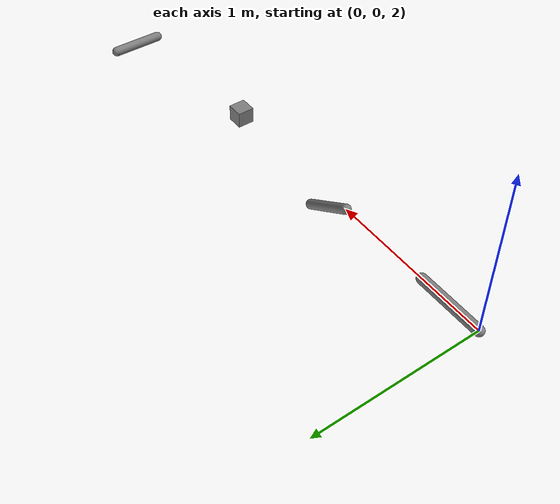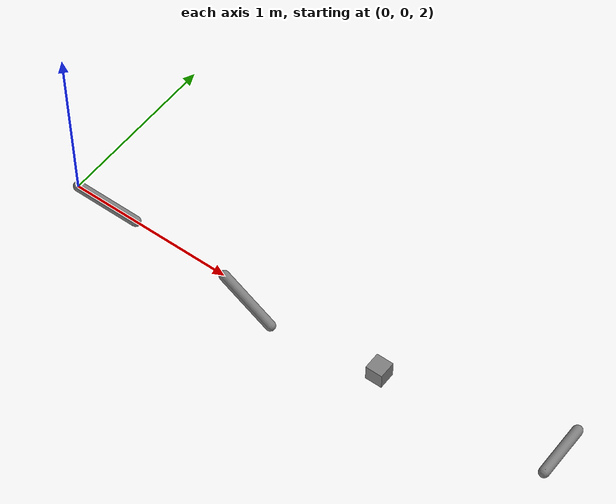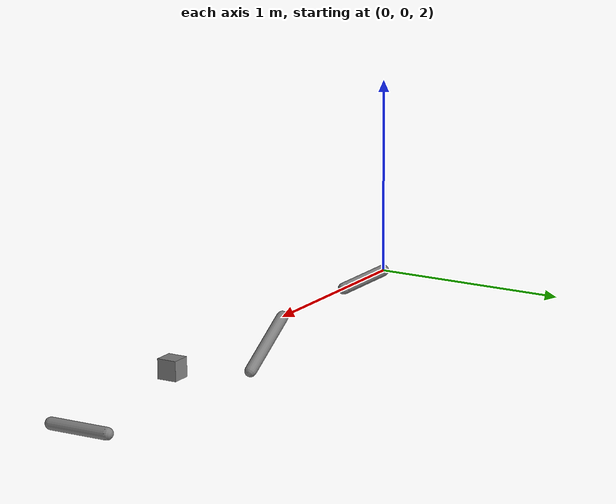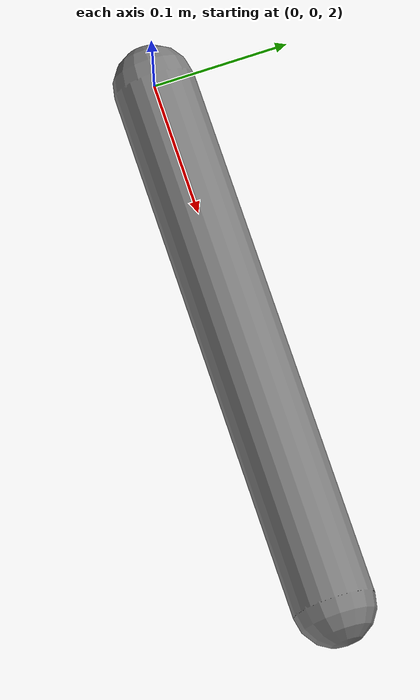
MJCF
<!-- Copyright 2026 -- CONTRIBUTORS. See LICENSE. -->
<mujoco model="limits">
  <worldbody>
    <body name="hinged" pos="0 0 2">
      <joint name="hinge" axis="0 1 0" range="-30 30"
             solreflimit="0.01 0.8" solimplimit="0.8 0.95 0.002"/>
      <geom type="capsule" fromto="0 0 0 0.4 0 0" size="0.03"/>
    </body>
    <body name="balled" pos="1 0 2">
      <joint name="ball" type="ball" range="0 45"/>
      <geom type="capsule" fromto="0 0 0 0.3 0 -0.2" size="0.03"/>
    </body>
    <body name="slider" pos="2 0 2">
      <joint name="slide" type="slide" axis="1 0 0.5" range="-0.2 0.1"
             margin="0.02" frictionloss="0.5"/>
      <geom type="box" size="0.05 0.05 0.05"/>
    </body>
    <body name="rubbed" pos="3 0 2">
      <joint name="rub" axis="1 0 0" frictionloss="0.05"
             solreffriction="0.03 1"/>
      <geom type="capsule" fromto="0 0 0 0 0.3 0" size="0.03"/>
    </body>
  </worldbody>
</mujoco>
